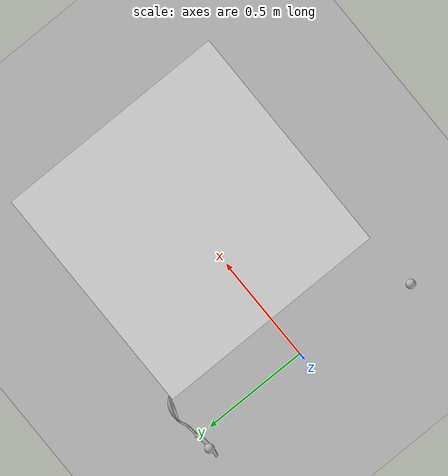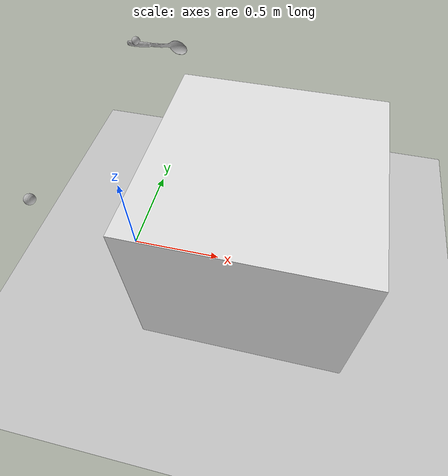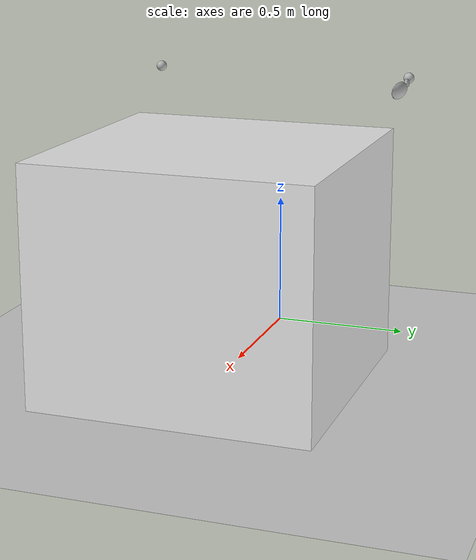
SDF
<?xml version='1.0'?>
<sdf version="1.6">
    <world name="b_big_bowl_b_table_knife_p">

        <include>
            <uri>model://sun</uri>
        </include>

        <include>
            <uri>model://ground_plane</uri>
        </include>

        <include>
            <uri>model://b_serving_spoon</uri>
            <pose>0.112572 0.508131 0.984633 1.382835 0.015399 0.080779</pose>
        </include>

        <include>
            <uri>model://b_kitchen_isle</uri>
            <pose>0.729232 0 0 0 0 0</pose>
        </include>

        <!-- Left Gripper -->
        <include>
            <uri>model://gripper</uri>
            <name>left_ee</name>
            <pose>0 0.5 1 0 0 0</pose>

            <plugin name="l_position_controller" filename="libposition_controller_plugin.so">
              <linkName>link</linkName>
              <referenceFrameName>base_link</referenceFrameName>
              <targetFrameName>l_gripper_tool_frame</targetFrameName>
            </plugin>

            <plugin name="l_grip" filename="libQGripPlugin.so">
              <parentLinkName>link</parentLinkName>
              <childLinkName>b_serving_spoon::link</childLinkName>
              <relativeTranslation>0.113754242659 -0.0011588409543 -0.0106302052736</relativeTranslation>
              <relativeRotationXYZW>0.666600346565 0.0425760671496 0.0381869524717 0.743218243122</relativeRotationXYZW>
            </plugin>
        </include>

        <!-- Right Gripper -->
        <include>
            <uri>model://gripper</uri>
            <name>right_ee</name>
            <pose>0 -0.5 1 1.547368 1.402341 1.343703</pose>

            <plugin name="r_position_controller" filename="libposition_controller_plugin.so">
              <linkName>link</linkName>
              <referenceFrameName>base_link</referenceFrameName>
              <targetFrameName>r_gripper_tool_frame</targetFrameName>
            </plugin>

        </include>

        <plugin name="feature_visualization_plugin" filename="libgiskard_visualization_plugin.so"></plugin>

        <gui>
            <camera name='user_camera'>
                <pose>1.700789 1.175709 1.670612 0 0.375643 -2.675000</pose>
                <view_controller>orbit</view_controller>
            </camera>
        </gui>

    </world>
</sdf>

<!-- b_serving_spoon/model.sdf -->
<sdf version='1.6'>
	<model name='b_serving_spoon'>
		<static>false</static>
		<pose>0 0 0 0 0 0</pose>

		<link name='link'>
			<inertial>
			<mass>0.15</mass>
			<pose>0.0019638 -6.1791e-05 0.00018857 0 0 0</pose>
				<inertia>
					<ixx>0.0000075</ixx>
					<iyy>0.00112875</iyy>
					<izz>0.00112875</izz>
				</inertia>
			</inertial>
			<sensor name="tool_contact_sensor" type="contact">
				<always_on>true</always_on>
				<update_rate>30.0</update_rate>
				<contact>
					<collision>collision</collision>
				</contact>
				<plugin name="tool_bumper" filename="libgazebo_ros_bumper.so">
					<bumperTopicName>tool_contact_sensor_state</bumperTopicName>
					<frameName>world</frameName>
				</plugin>
			</sensor>
			<collision name='collision'>
				<geometry>
					<mesh>
						<uri>model://b_serving_spoon/b_serving_spoon.dae</uri>
					</mesh>
				</geometry>
				<surface>
					<friction>
						<ode>
							<mu>0.2</mu>
							<mu2>0.2</mu2>
						</ode>
					</friction>
				</surface>
			</collision>
			<visual name='visual'>
				<geometry>
					<mesh>
						<uri>model://b_serving_spoon/b_serving_spoon.dae</uri>
					</mesh>
				</geometry>
			</visual>
		</link>
	</model>
</sdf>

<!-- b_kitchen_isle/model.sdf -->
<sdf version='1.6'>
    <model name='b_kitchen_isle'>
        <static>false</static>

        <pose>0 0 0 0 0 0</pose>

        <link name='link'>
            <pose>0 0 0.425 0 0 0</pose>

            <gravity>false</gravity>

           <collision name='collision'>
               <geometry>
                   <box>
                        <size>1.0 1.0 0.85</size>
                    </box>
               </geometry>
           </collision>

            <visual name='visual'>
                <geometry>
                   <box>
                        <size>1.0 1.0 0.85</size>
                    </box>
               </geometry>
               <material>
                    <script>
                        <name>Gazebo/White</name>
                        <uri>file://media/materials/scripts/gazebo.material</uri>
                    </script>
                </material>
            </visual>

        </link>
    </model>
</sdf>

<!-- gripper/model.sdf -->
<sdf version='1.6'>
    <model name='gripper'>
        <static>false</static>
        <allow_auto_disable>false</allow_auto_disable>

        <pose>0 0 0 0 0 0</pose>

        <link name='link'>
            <pose>0 0 0 0 0 0</pose>

            <gravity>false</gravity>

            <visual name='visual'>
                <geometry>
                    <sphere>
                        <radius>0.02</radius>
                    </sphere>
                </geometry>
            </visual>

        </link>
    </model>
</sdf>
